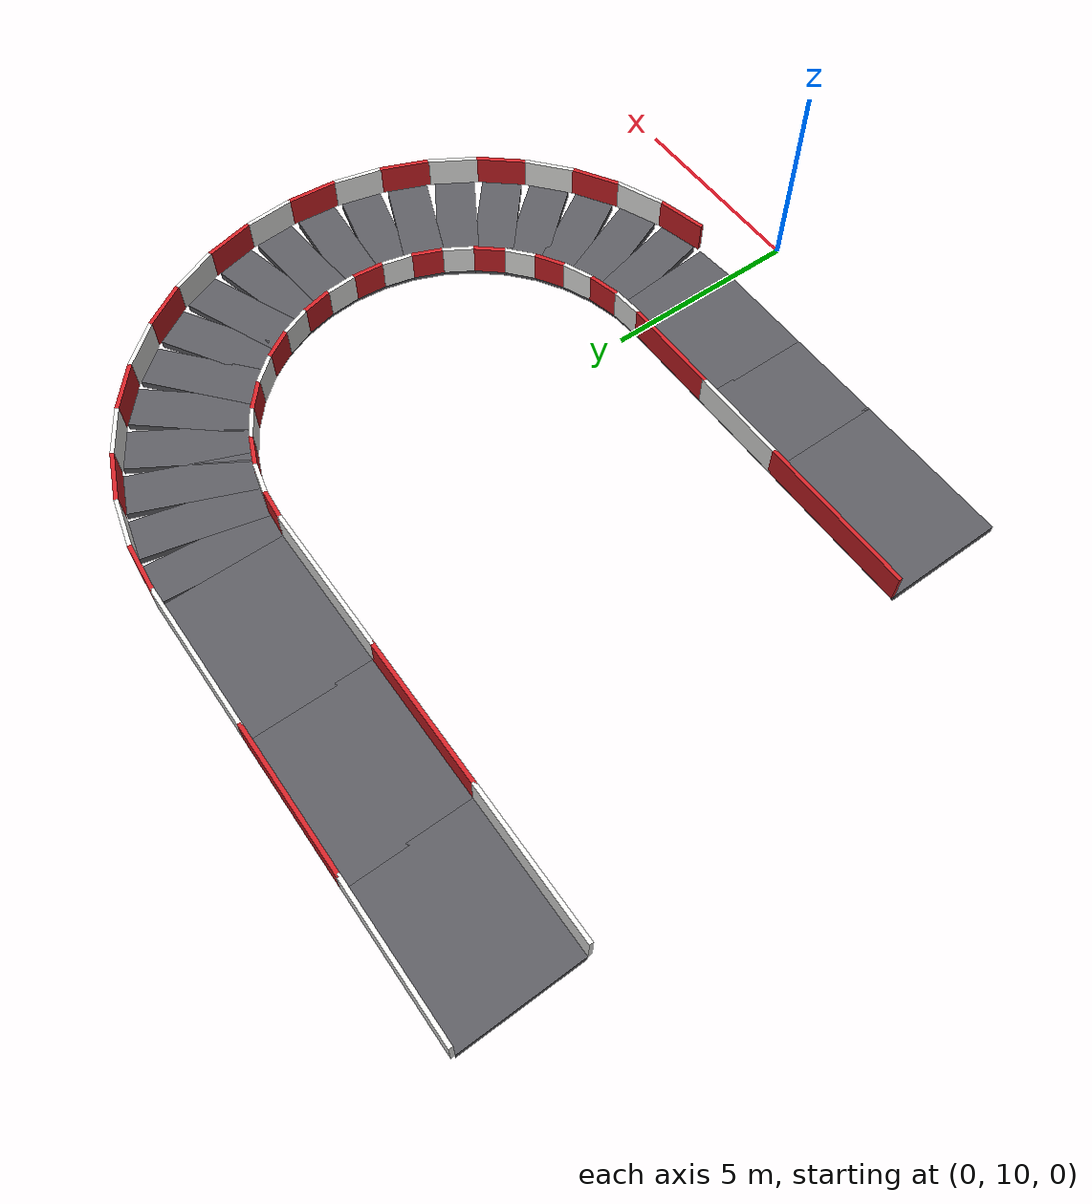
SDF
<sdf version="1.10">
 <world name="ika_parkur">
  <model name="parkur_road">
   <static>true</static>
   <link name="road_0118">
    <pose>-7 13 -0.1 0 0 0</pose>
    <collision name="road_0118_col">
     <geometry><box><size>4.08 3 0.2</size></box></geometry>
     <surface>
      <friction><ode><mu>1</mu><mu2>1</mu2></ode></friction>
      <contact><ode><kp>1000000</kp><kd>1</kd></ode></contact>
     </surface>
    </collision>
    <visual name="road_0118_vis">
     <geometry><box><size>4.08 3 0.2</size></box></geometry>
     <material>
      <ambient>0.35 0.35 0.37 1</ambient>
      <diffuse>0.35 0.35 0.37 1</diffuse>
      <specular>0.1 0.1 0.1 1</specular>
     </material>
    </visual>
   </link>
   <link name="road_0119">
    <pose>-3.75 13 -0.1 0 0 0</pose>
    <collision name="road_0119_col">
     <geometry><box><size>2.55 3 0.2</size></box></geometry>
     <surface>
      <friction><ode><mu>1</mu><mu2>1</mu2></ode></friction>
      <contact><ode><kp>1000000</kp><kd>1</kd></ode></contact>
     </surface>
    </collision>
    <visual name="road_0119_vis">
     <geometry><box><size>2.55 3 0.2</size></box></geometry>
     <material>
      <ambient>0.35 0.35 0.37 1</ambient>
      <diffuse>0.35 0.35 0.37 1</diffuse>
      <specular>0.1 0.1 0.1 1</specular>
     </material>
    </visual>
   </link>
   <link name="road_0120">
    <pose>-1.25 13 -0.1 0 0 0</pose>
    <collision name="road_0120_col">
     <geometry><box><size>2.55 3 0.2</size></box></geometry>
     <surface>
      <friction><ode><mu>1</mu><mu2>1</mu2></ode></friction>
      <contact><ode><kp>1000000</kp><kd>1</kd></ode></contact>
     </surface>
    </collision>
    <visual name="road_0120_vis">
     <geometry><box><size>2.55 3 0.2</size></box></geometry>
     <material>
      <ambient>0.35 0.35 0.37 1</ambient>
      <diffuse>0.35 0.35 0.37 1</diffuse>
      <specular>0.1 0.1 0.1 1</specular>
     </material>
    </visual>
   </link>
   <link name="road_0121">
    <pose>0.508412 13.040013 -0.1 0 0 0.07854</pose>
    <collision name="road_0121_col">
     <geometry><box><size>1.040368 3 0.2</size></box></geometry>
     <surface>
      <friction><ode><mu>1</mu><mu2>1</mu2></ode></friction>
      <contact><ode><kp>1000000</kp><kd>1</kd></ode></contact>
     </surface>
    </collision>
    <visual name="road_0121_vis">
     <geometry><box><size>1.040368 3 0.2</size></box></geometry>
     <material>
      <ambient>0.35 0.35 0.37 1</ambient>
      <diffuse>0.35 0.35 0.37 1</diffuse>
      <specular>0.1 0.1 0.1 1</specular>
     </material>
    </visual>
   </link>
   <link name="road_0122">
    <pose>1.512717 13.199079 -0.1 0 0 0.235619</pose>
    <collision name="road_0122_col">
     <geometry><box><size>1.040368 3 0.2</size></box></geometry>
     <surface>
      <friction><ode><mu>1</mu><mu2>1</mu2></ode></friction>
      <contact><ode><kp>1000000</kp><kd>1</kd></ode></contact>
     </surface>
    </collision>
    <visual name="road_0122_vis">
     <geometry><box><size>1.040368 3 0.2</size></box></geometry>
     <material>
      <ambient>0.35 0.35 0.37 1</ambient>
      <diffuse>0.35 0.35 0.37 1</diffuse>
      <specular>0.1 0.1 0.1 1</specular>
     </material>
    </visual>
   </link>
   <link name="road_0123">
    <pose>2.479774 13.513295 -0.1 0 0 0.392699</pose>
    <collision name="road_0123_col">
     <geometry><box><size>1.040368 3 0.2</size></box></geometry>
     <surface>
      <friction><ode><mu>1</mu><mu2>1</mu2></ode></friction>
      <contact><ode><kp>1000000</kp><kd>1</kd></ode></contact>
     </surface>
    </collision>
    <visual name="road_0123_vis">
     <geometry><box><size>1.040368 3 0.2</size></box></geometry>
     <material>
      <ambient>0.35 0.35 0.37 1</ambient>
      <diffuse>0.35 0.35 0.37 1</diffuse>
      <specular>0.1 0.1 0.1 1</specular>
     </material>
    </visual>
   </link>
   <link name="road_0124">
    <pose>3.385771 13.974924 -0.1 0 0 0.549779</pose>
    <collision name="road_0124_col">
     <geometry><box><size>1.040368 3 0.2</size></box></geometry>
     <surface>
      <friction><ode><mu>1</mu><mu2>1</mu2></ode></friction>
      <contact><ode><kp>1000000</kp><kd>1</kd></ode></contact>
     </surface>
    </collision>
    <visual name="road_0124_vis">
     <geometry><box><size>1.040368 3 0.2</size></box></geometry>
     <material>
      <ambient>0.35 0.35 0.37 1</ambient>
      <diffuse>0.35 0.35 0.37 1</diffuse>
      <specular>0.1 0.1 0.1 1</specular>
     </material>
    </visual>
   </link>
   <link name="road_0125">
    <pose>4.208399 14.572598 -0.1 0 0 0.706858</pose>
    <collision name="road_0125_col">
     <geometry><box><size>1.040368 3 0.2</size></box></geometry>
     <surface>
      <friction><ode><mu>1</mu><mu2>1</mu2></ode></friction>
      <contact><ode><kp>1000000</kp><kd>1</kd></ode></contact>
     </surface>
    </collision>
    <visual name="road_0125_vis">
     <geometry><box><size>1.040368 3 0.2</size></box></geometry>
     <material>
      <ambient>0.35 0.35 0.37 1</ambient>
      <diffuse>0.35 0.35 0.37 1</diffuse>
      <specular>0.1 0.1 0.1 1</specular>
     </material>
    </visual>
   </link>
   <link name="road_0126">
    <pose>4.927402 15.291601 -0.1 0 0 0.863938</pose>
    <collision name="road_0126_col">
     <geometry><box><size>1.040368 3 0.2</size></box></geometry>
     <surface>
      <friction><ode><mu>1</mu><mu2>1</mu2></ode></friction>
      <contact><ode><kp>1000000</kp><kd>1</kd></ode></contact>
     </surface>
    </collision>
    <visual name="road_0126_vis">
     <geometry><box><size>1.040368 3 0.2</size></box></geometry>
     <material>
      <ambient>0.35 0.35 0.37 1</ambient>
      <diffuse>0.35 0.35 0.37 1</diffuse>
      <specular>0.1 0.1 0.1 1</specular>
     </material>
    </visual>
   </link>
   <link name="road_0127">
    <pose>5.525076 16.114229 -0.1 0 0 1.021018</pose>
    <collision name="road_0127_col">
     <geometry><box><size>1.040368 3 0.2</size></box></geometry>
     <surface>
      <friction><ode><mu>1</mu><mu2>1</mu2></ode></friction>
      <contact><ode><kp>1000000</kp><kd>1</kd></ode></contact>
     </surface>
    </collision>
    <visual name="road_0127_vis">
     <geometry><box><size>1.040368 3 0.2</size></box></geometry>
     <material>
      <ambient>0.35 0.35 0.37 1</ambient>
      <diffuse>0.35 0.35 0.37 1</diffuse>
      <specular>0.1 0.1 0.1 1</specular>
     </material>
    </visual>
   </link>
   <link name="road_0128">
    <pose>5.986705 17.020226 -0.1 0 0 1.178097</pose>
    <collision name="road_0128_col">
     <geometry><box><size>1.040368 3 0.2</size></box></geometry>
     <surface>
      <friction><ode><mu>1</mu><mu2>1</mu2></ode></friction>
      <contact><ode><kp>1000000</kp><kd>1</kd></ode></contact>
     </surface>
    </collision>
    <visual name="road_0128_vis">
     <geometry><box><size>1.040368 3 0.2</size></box></geometry>
     <material>
      <ambient>0.35 0.35 0.37 1</ambient>
      <diffuse>0.35 0.35 0.37 1</diffuse>
      <specular>0.1 0.1 0.1 1</specular>
     </material>
    </visual>
   </link>
   <link name="road_0129">
    <pose>6.300921 17.987283 -0.1 0 0 1.335177</pose>
    <collision name="road_0129_col">
     <geometry><box><size>1.040368 3 0.2</size></box></geometry>
     <surface>
      <friction><ode><mu>1</mu><mu2>1</mu2></ode></friction>
      <contact><ode><kp>1000000</kp><kd>1</kd></ode></contact>
     </surface>
    </collision>
    <visual name="road_0129_vis">
     <geometry><box><size>1.040368 3 0.2</size></box></geometry>
     <material>
      <ambient>0.35 0.35 0.37 1</ambient>
      <diffuse>0.35 0.35 0.37 1</diffuse>
      <specular>0.1 0.1 0.1 1</specular>
     </material>
    </visual>
   </link>
   <link name="road_0130">
    <pose>6.459987 18.991588 -0.1 0 0 1.492257</pose>
    <collision name="road_0130_col">
     <geometry><box><size>1.040368 3 0.2</size></box></geometry>
     <surface>
      <friction><ode><mu>1</mu><mu2>1</mu2></ode></friction>
      <contact><ode><kp>1000000</kp><kd>1</kd></ode></contact>
     </surface>
    </collision>
    <visual name="road_0130_vis">
     <geometry><box><size>1.040368 3 0.2</size></box></geometry>
     <material>
      <ambient>0.35 0.35 0.37 1</ambient>
      <diffuse>0.35 0.35 0.37 1</diffuse>
      <specular>0.1 0.1 0.1 1</specular>
     </material>
    </visual>
   </link>
   <link name="road_0131">
    <pose>6.459987 20.008412 -0.1 0 0 1.649336</pose>
    <collision name="road_0131_col">
     <geometry><box><size>1.040368 3 0.2</size></box></geometry>
     <surface>
      <friction><ode><mu>1</mu><mu2>1</mu2></ode></friction>
      <contact><ode><kp>1000000</kp><kd>1</kd></ode></contact>
     </surface>
    </collision>
    <visual name="road_0131_vis">
     <geometry><box><size>1.040368 3 0.2</size></box></geometry>
     <material>
      <ambient>0.35 0.35 0.37 1</ambient>
      <diffuse>0.35 0.35 0.37 1</diffuse>
      <specular>0.1 0.1 0.1 1</specular>
     </material>
    </visual>
   </link>
   <link name="road_0132">
    <pose>6.300921 21.012717 -0.1 0 0 1.806416</pose>
    <collision name="road_0132_col">
     <geometry><box><size>1.040368 3 0.2</size></box></geometry>
     <surface>
      <friction><ode><mu>1</mu><mu2>1</mu2></ode></friction>
      <contact><ode><kp>1000000</kp><kd>1</kd></ode></contact>
     </surface>
    </collision>
    <visual name="road_0132_vis">
     <geometry><box><size>1.040368 3 0.2</size></box></geometry>
     <material>
      <ambient>0.35 0.35 0.37 1</ambient>
      <diffuse>0.35 0.35 0.37 1</diffuse>
      <specular>0.1 0.1 0.1 1</specular>
     </material>
    </visual>
   </link>
   <link name="road_0133">
    <pose>5.986705 21.979774 -0.1 0 0 1.963495</pose>
    <collision name="road_0133_col">
     <geometry><box><size>1.040368 3 0.2</size></box></geometry>
     <surface>
      <friction><ode><mu>1</mu><mu2>1</mu2></ode></friction>
      <contact><ode><kp>1000000</kp><kd>1</kd></ode></contact>
     </surface>
    </collision>
    <visual name="road_0133_vis">
     <geometry><box><size>1.040368 3 0.2</size></box></geometry>
     <material>
      <ambient>0.35 0.35 0.37 1</ambient>
      <diffuse>0.35 0.35 0.37 1</diffuse>
      <specular>0.1 0.1 0.1 1</specular>
     </material>
    </visual>
   </link>
   <link name="road_0134">
    <pose>5.525076 22.885771 -0.1 0 0 2.120575</pose>
    <collision name="road_0134_col">
     <geometry><box><size>1.040368 3 0.2</size></box></geometry>
     <surface>
      <friction><ode><mu>1</mu><mu2>1</mu2></ode></friction>
      <contact><ode><kp>1000000</kp><kd>1</kd></ode></contact>
     </surface>
    </collision>
    <visual name="road_0134_vis">
     <geometry><box><size>1.040368 3 0.2</size></box></geometry>
     <material>
      <ambient>0.35 0.35 0.37 1</ambient>
      <diffuse>0.35 0.35 0.37 1</diffuse>
      <specular>0.1 0.1 0.1 1</specular>
     </material>
    </visual>
   </link>
   <link name="road_0135">
    <pose>4.927402 23.708399 -0.1 0 0 2.277655</pose>
    <collision name="road_0135_col">
     <geometry><box><size>1.040368 3 0.2</size></box></geometry>
     <surface>
      <friction><ode><mu>1</mu><mu2>1</mu2></ode></friction>
      <contact><ode><kp>1000000</kp><kd>1</kd></ode></contact>
     </surface>
    </collision>
    <visual name="road_0135_vis">
     <geometry><box><size>1.040368 3 0.2</size></box></geometry>
     <material>
      <ambient>0.35 0.35 0.37 1</ambient>
      <diffuse>0.35 0.35 0.37 1</diffuse>
      <specular>0.1 0.1 0.1 1</specular>
     </material>
    </visual>
   </link>
   <link name="road_0136">
    <pose>4.208399 24.427402 -0.1 0 0 2.434734</pose>
    <collision name="road_0136_col">
     <geometry><box><size>1.040368 3 0.2</size></box></geometry>
     <surface>
      <friction><ode><mu>1</mu><mu2>1</mu2></ode></friction>
      <contact><ode><kp>1000000</kp><kd>1</kd></ode></contact>
     </surface>
    </collision>
    <visual name="road_0136_vis">
     <geometry><box><size>1.040368 3 0.2</size></box></geometry>
     <material>
      <ambient>0.35 0.35 0.37 1</ambient>
      <diffuse>0.35 0.35 0.37 1</diffuse>
      <specular>0.1 0.1 0.1 1</specular>
     </material>
    </visual>
   </link>
   <link name="road_0137">
    <pose>3.385771 25.025076 -0.1 0 0 2.591814</pose>
    <collision name="road_0137_col">
     <geometry><box><size>1.040368 3 0.2</size></box></geometry>
     <surface>
      <friction><ode><mu>1</mu><mu2>1</mu2></ode></friction>
      <contact><ode><kp>1000000</kp><kd>1</kd></ode></contact>
     </surface>
    </collision>
    <visual name="road_0137_vis">
     <geometry><box><size>1.040368 3 0.2</size></box></geometry>
     <material>
      <ambient>0.35 0.35 0.37 1</ambient>
      <diffuse>0.35 0.35 0.37 1</diffuse>
      <specular>0.1 0.1 0.1 1</specular>
     </material>
    </visual>
   </link>
   <link name="road_0138">
    <pose>2.479774 25.486705 -0.1 0 0 2.748894</pose>
    <collision name="road_0138_col">
     <geometry><box><size>1.040368 3 0.2</size></box></geometry>
     <surface>
      <friction><ode><mu>1</mu><mu2>1</mu2></ode></friction>
      <contact><ode><kp>1000000</kp><kd>1</kd></ode></contact>
     </surface>
    </collision>
    <visual name="road_0138_vis">
     <geometry><box><size>1.040368 3 0.2</size></box></geometry>
     <material>
      <ambient>0.35 0.35 0.37 1</ambient>
      <diffuse>0.35 0.35 0.37 1</diffuse>
      <specular>0.1 0.1 0.1 1</specular>
     </material>
    </visual>
   </link>
   <link name="road_0139">
    <pose>1.512717 25.800921 -0.1 0 0 2.905973</pose>
    <collision name="road_0139_col">
     <geometry><box><size>1.040368 3 0.2</size></box></geometry>
     <surface>
      <friction><ode><mu>1</mu><mu2>1</mu2></ode></friction>
      <contact><ode><kp>1000000</kp><kd>1</kd></ode></contact>
     </surface>
    </collision>
    <visual name="road_0139_vis">
     <geometry><box><size>1.040368 3 0.2</size></box></geometry>
     <material>
      <ambient>0.35 0.35 0.37 1</ambient>
      <diffuse>0.35 0.35 0.37 1</diffuse>
      <specular>0.1 0.1 0.1 1</specular>
     </material>
    </visual>
   </link>
   <link name="road_0140">
    <pose>0.508412 25.959987 -0.1 0 0 3.063053</pose>
    <collision name="road_0140_col">
     <geometry><box><size>1.040368 3 0.2</size></box></geometry>
     <surface>
      <friction><ode><mu>1</mu><mu2>1</mu2></ode></friction>
      <contact><ode><kp>1000000</kp><kd>1</kd></ode></contact>
     </surface>
    </collision>
    <visual name="road_0140_vis">
     <geometry><box><size>1.040368 3 0.2</size></box></geometry>
     <material>
      <ambient>0.35 0.35 0.37 1</ambient>
      <diffuse>0.35 0.35 0.37 1</diffuse>
      <specular>0.1 0.1 0.1 1</specular>
     </material>
    </visual>
   </link>
   <link name="road_0141">
    <pose>-1.875 26 -0.1 0 0 3.141593</pose>
    <collision name="road_0141_col">
     <geometry><box><size>3.825 3 0.2</size></box></geometry>
     <surface>
      <friction><ode><mu>1</mu><mu2>1</mu2></ode></friction>
      <contact><ode><kp>1000000</kp><kd>1</kd></ode></contact>
     </surface>
    </collision>
    <visual name="road_0141_vis">
     <geometry><box><size>3.825 3 0.2</size></box></geometry>
     <material>
      <ambient>0.35 0.35 0.37 1</ambient>
      <diffuse>0.35 0.35 0.37 1</diffuse>
      <specular>0.1 0.1 0.1 1</specular>
     </material>
    </visual>
   </link>
   <link name="road_0142">
    <pose>-5.625 26 -0.1 0 0 3.141593</pose>
    <collision name="road_0142_col">
     <geometry><box><size>3.825 3 0.2</size></box></geometry>
     <surface>
      <friction><ode><mu>1</mu><mu2>1</mu2></ode></friction>
      <contact><ode><kp>1000000</kp><kd>1</kd></ode></contact>
     </surface>
    </collision>
    <visual name="road_0142_vis">
     <geometry><box><size>3.825 3 0.2</size></box></geometry>
     <material>
      <ambient>0.35 0.35 0.37 1</ambient>
      <diffuse>0.35 0.35 0.37 1</diffuse>
      <specular>0.1 0.1 0.1 1</specular>
     </material>
    </visual>
   </link>
   <link name="road_0143">
    <pose>-9.375 26 -0.1 0 0 3.141593</pose>
    <collision name="road_0143_col">
     <geometry><box><size>3.825 3 0.2</size></box></geometry>
     <surface>
      <friction><ode><mu>1</mu><mu2>1</mu2></ode></friction>
      <contact><ode><kp>1000000</kp><kd>1</kd></ode></contact>
     </surface>
    </collision>
    <visual name="road_0143_vis">
     <geometry><box><size>3.825 3 0.2</size></box></geometry>
     <material>
      <ambient>0.35 0.35 0.37 1</ambient>
      <diffuse>0.35 0.35 0.37 1</diffuse>
      <specular>0.1 0.1 0.1 1</specular>
     </material>
    </visual>
   </link>
  </model>
  <model name="parkur_barriers">
   <static>true</static>
   <link name="barrier_l_0118">
    <pose>-7 14.55 0.4 0 0 0</pose>
    <collision name="barrier_l_0118_col">
     <geometry><box><size>4.08 0.1 0.8</size></box></geometry>
     <surface>
      <friction><ode><mu>0.6</mu><mu2>0.6</mu2></ode></friction>
      <contact><ode><kp>1000000</kp><kd>1</kd></ode></contact>
     </surface>
    </collision>
    <visual name="barrier_l_0118_vis">
     <geometry><box><size>4.08 0.1 0.8</size></box></geometry>
     <material>
      <ambient>0.81 0.13 0.15 1</ambient>
      <diffuse>0.81 0.13 0.15 1</diffuse>
      <specular>0.1 0.1 0.1 1</specular>
     </material>
    </visual>
   </link>
   <link name="barrier_l_0119">
    <pose>-3.75 14.55 0.4 0 0 0</pose>
    <collision name="barrier_l_0119_col">
     <geometry><box><size>2.55 0.1 0.8</size></box></geometry>
     <surface>
      <friction><ode><mu>0.6</mu><mu2>0.6</mu2></ode></friction>
      <contact><ode><kp>1000000</kp><kd>1</kd></ode></contact>
     </surface>
    </collision>
    <visual name="barrier_l_0119_vis">
     <geometry><box><size>2.55 0.1 0.8</size></box></geometry>
     <material>
      <ambient>0.93 0.93 0.92 1</ambient>
      <diffuse>0.93 0.93 0.92 1</diffuse>
      <specular>0.1 0.1 0.1 1</specular>
     </material>
    </visual>
   </link>
   <link name="barrier_l_0120">
    <pose>-1.25 14.55 0.4 0 0 0</pose>
    <collision name="barrier_l_0120_col">
     <geometry><box><size>2.55 0.1 0.8</size></box></geometry>
     <surface>
      <friction><ode><mu>0.6</mu><mu2>0.6</mu2></ode></friction>
      <contact><ode><kp>1000000</kp><kd>1</kd></ode></contact>
     </surface>
    </collision>
    <visual name="barrier_l_0120_vis">
     <geometry><box><size>2.55 0.1 0.8</size></box></geometry>
     <material>
      <ambient>0.81 0.13 0.15 1</ambient>
      <diffuse>0.81 0.13 0.15 1</diffuse>
      <specular>0.1 0.1 0.1 1</specular>
     </material>
    </visual>
   </link>
   <link name="barrier_l_0121">
    <pose>0.387175 14.580471 0.4 0 0 0.07854</pose>
    <collision name="barrier_l_0121_col">
     <geometry><box><size>0.79228 0.1 0.8</size></box></geometry>
     <surface>
      <friction><ode><mu>0.6</mu><mu2>0.6</mu2></ode></friction>
      <contact><ode><kp>1000000</kp><kd>1</kd></ode></contact>
     </surface>
    </collision>
    <visual name="barrier_l_0121_vis">
     <geometry><box><size>0.79228 0.1 0.8</size></box></geometry>
     <material>
      <ambient>0.93 0.93 0.92 1</ambient>
      <diffuse>0.93 0.93 0.92 1</diffuse>
      <specular>0.1 0.1 0.1 1</specular>
     </material>
    </visual>
   </link>
   <link name="barrier_l_0122">
    <pose>1.151992 14.701606 0.4 0 0 0.235619</pose>
    <collision name="barrier_l_0122_col">
     <geometry><box><size>0.79228 0.1 0.8</size></box></geometry>
     <surface>
      <friction><ode><mu>0.6</mu><mu2>0.6</mu2></ode></friction>
      <contact><ode><kp>1000000</kp><kd>1</kd></ode></contact>
     </surface>
    </collision>
    <visual name="barrier_l_0122_vis">
     <geometry><box><size>0.79228 0.1 0.8</size></box></geometry>
     <material>
      <ambient>0.81 0.13 0.15 1</ambient>
      <diffuse>0.81 0.13 0.15 1</diffuse>
      <specular>0.1 0.1 0.1 1</specular>
     </material>
    </visual>
   </link>
   <link name="barrier_r_0122">
    <pose>1.873442 11.696552 0.4 0 0 0.235619</pose>
    <collision name="barrier_r_0122_col">
     <geometry><box><size>1.288455 0.1 0.8</size></box></geometry>
     <surface>
      <friction><ode><mu>0.6</mu><mu2>0.6</mu2></ode></friction>
      <contact><ode><kp>1000000</kp><kd>1</kd></ode></contact>
     </surface>
    </collision>
    <visual name="barrier_r_0122_vis">
     <geometry><box><size>1.288455 0.1 0.8</size></box></geometry>
     <material>
      <ambient>0.81 0.13 0.15 1</ambient>
      <diffuse>0.81 0.13 0.15 1</diffuse>
      <specular>0.1 0.1 0.1 1</specular>
     </material>
    </visual>
   </link>
   <link name="barrier_l_0123">
    <pose>1.888444 14.940894 0.4 0 0 0.392699</pose>
    <collision name="barrier_l_0123_col">
     <geometry><box><size>0.79228 0.1 0.8</size></box></geometry>
     <surface>
      <friction><ode><mu>0.6</mu><mu2>0.6</mu2></ode></friction>
      <contact><ode><kp>1000000</kp><kd>1</kd></ode></contact>
     </surface>
    </collision>
    <visual name="barrier_l_0123_vis">
     <geometry><box><size>0.79228 0.1 0.8</size></box></geometry>
     <material>
      <ambient>0.93 0.93 0.92 1</ambient>
      <diffuse>0.93 0.93 0.92 1</diffuse>
      <specular>0.1 0.1 0.1 1</specular>
     </material>
    </visual>
   </link>
   <link name="barrier_r_0123">
    <pose>3.071105 12.085696 0.4 0 0 0.392699</pose>
    <collision name="barrier_r_0123_col">
     <geometry><box><size>1.288455 0.1 0.8</size></box></geometry>
     <surface>
      <friction><ode><mu>0.6</mu><mu2>0.6</mu2></ode></friction>
      <contact><ode><kp>1000000</kp><kd>1</kd></ode></contact>
     </surface>
    </collision>
    <visual name="barrier_r_0123_vis">
     <geometry><box><size>1.288455 0.1 0.8</size></box></geometry>
     <material>
      <ambient>0.93 0.93 0.92 1</ambient>
      <diffuse>0.93 0.93 0.92 1</diffuse>
      <specular>0.1 0.1 0.1 1</specular>
     </material>
    </visual>
   </link>
   <link name="barrier_l_0124">
    <pose>2.578395 15.292442 0.4 0 0 0.549779</pose>
    <collision name="barrier_l_0124_col">
     <geometry><box><size>0.79228 0.1 0.8</size></box></geometry>
     <surface>
      <friction><ode><mu>0.6</mu><mu2>0.6</mu2></ode></friction>
      <contact><ode><kp>1000000</kp><kd>1</kd></ode></contact>
     </surface>
    </collision>
    <visual name="barrier_l_0124_vis">
     <geometry><box><size>0.79228 0.1 0.8</size></box></geometry>
     <material>
      <ambient>0.81 0.13 0.15 1</ambient>
      <diffuse>0.81 0.13 0.15 1</diffuse>
      <specular>0.1 0.1 0.1 1</specular>
     </material>
    </visual>
   </link>
   <link name="barrier_r_0124">
    <pose>4.193147 12.657405 0.4 0 0 0.549779</pose>
    <collision name="barrier_r_0124_col">
     <geometry><box><size>1.288455 0.1 0.8</size></box></geometry>
     <surface>
      <friction><ode><mu>0.6</mu><mu2>0.6</mu2></ode></friction>
      <contact><ode><kp>1000000</kp><kd>1</kd></ode></contact>
     </surface>
    </collision>
    <visual name="barrier_r_0124_vis">
     <geometry><box><size>1.288455 0.1 0.8</size></box></geometry>
     <material>
      <ambient>0.81 0.13 0.15 1</ambient>
      <diffuse>0.81 0.13 0.15 1</diffuse>
      <specular>0.1 0.1 0.1 1</specular>
     </material>
    </visual>
   </link>
   <link name="barrier_l_0125">
    <pose>3.204858 15.747594 0.4 0 0 0.706858</pose>
    <collision name="barrier_l_0125_col">
     <geometry><box><size>0.79228 0.1 0.8</size></box></geometry>
     <surface>
      <friction><ode><mu>0.6</mu><mu2>0.6</mu2></ode></friction>
      <contact><ode><kp>1000000</kp><kd>1</kd></ode></contact>
     </surface>
    </collision>
    <visual name="barrier_l_0125_vis">
     <geometry><box><size>0.79228 0.1 0.8</size></box></geometry>
     <material>
      <ambient>0.93 0.93 0.92 1</ambient>
      <diffuse>0.93 0.93 0.92 1</diffuse>
      <specular>0.1 0.1 0.1 1</specular>
     </material>
    </visual>
   </link>
   <link name="barrier_r_0125">
    <pose>5.21194 13.397602 0.4 0 0 0.706858</pose>
    <collision name="barrier_r_0125_col">
     <geometry><box><size>1.288455 0.1 0.8</size></box></geometry>
     <surface>
      <friction><ode><mu>0.6</mu><mu2>0.6</mu2></ode></friction>
      <contact><ode><kp>1000000</kp><kd>1</kd></ode></contact>
     </surface>
    </collision>
    <visual name="barrier_r_0125_vis">
     <geometry><box><size>1.288455 0.1 0.8</size></box></geometry>
     <material>
      <ambient>0.93 0.93 0.92 1</ambient>
      <diffuse>0.93 0.93 0.92 1</diffuse>
      <specular>0.1 0.1 0.1 1</specular>
     </material>
    </visual>
   </link>
   <link name="barrier_l_0126">
    <pose>3.752406 16.295142 0.4 0 0 0.863938</pose>
    <collision name="barrier_l_0126_col">
     <geometry><box><size>0.79228 0.1 0.8</size></box></geometry>
     <surface>
      <friction><ode><mu>0.6</mu><mu2>0.6</mu2></ode></friction>
      <contact><ode><kp>1000000</kp><kd>1</kd></ode></contact>
     </surface>
    </collision>
    <visual name="barrier_l_0126_vis">
     <geometry><box><size>0.79228 0.1 0.8</size></box></geometry>
     <material>
      <ambient>0.81 0.13 0.15 1</ambient>
      <diffuse>0.81 0.13 0.15 1</diffuse>
      <specular>0.1 0.1 0.1 1</specular>
     </material>
    </visual>
   </link>
   <link name="barrier_r_0126">
    <pose>6.102398 14.28806 0.4 0 0 0.863938</pose>
    <collision name="barrier_r_0126_col">
     <geometry><box><size>1.288455 0.1 0.8</size></box></geometry>
     <surface>
      <friction><ode><mu>0.6</mu><mu2>0.6</mu2></ode></friction>
      <contact><ode><kp>1000000</kp><kd>1</kd></ode></contact>
     </surface>
    </collision>
    <visual name="barrier_r_0126_vis">
     <geometry><box><size>1.288455 0.1 0.8</size></box></geometry>
     <material>
      <ambient>0.81 0.13 0.15 1</ambient>
      <diffuse>0.81 0.13 0.15 1</diffuse>
      <specular>0.1 0.1 0.1 1</specular>
     </material>
    </visual>
   </link>
   <link name="barrier_l_0127">
    <pose>4.207558 16.921605 0.4 0 0 1.021018</pose>
    <collision name="barrier_l_0127_col">
     <geometry><box><size>0.79228 0.1 0.8</size></box></geometry>
     <surface>
      <friction><ode><mu>0.6</mu><mu2>0.6</mu2></ode></friction>
      <contact><ode><kp>1000000</kp><kd>1</kd></ode></contact>
     </surface>
    </collision>
    <visual name="barrier_l_0127_vis">
     <geometry><box><size>0.79228 0.1 0.8</size></box></geometry>
     <material>
      <ambient>0.93 0.93 0.92 1</ambient>
      <diffuse>0.93 0.93 0.92 1</diffuse>
      <specular>0.1 0.1 0.1 1</specular>
     </material>
    </visual>
   </link>
   <link name="barrier_r_0127">
    <pose>6.842595 15.306853 0.4 0 0 1.021018</pose>
    <collision name="barrier_r_0127_col">
     <geometry><box><size>1.288455 0.1 0.8</size></box></geometry>
     <surface>
      <friction><ode><mu>0.6</mu><mu2>0.6</mu2></ode></friction>
      <contact><ode><kp>1000000</kp><kd>1</kd></ode></contact>
     </surface>
    </collision>
    <visual name="barrier_r_0127_vis">
     <geometry><box><size>1.288455 0.1 0.8</size></box></geometry>
     <material>
      <ambient>0.93 0.93 0.92 1</ambient>
      <diffuse>0.93 0.93 0.92 1</diffuse>
      <specular>0.1 0.1 0.1 1</specular>
     </material>
    </visual>
   </link>
   <link name="barrier_l_0128">
    <pose>4.559106 17.611556 0.4 0 0 1.178097</pose>
    <collision name="barrier_l_0128_col">
     <geometry><box><size>0.79228 0.1 0.8</size></box></geometry>
     <surface>
      <friction><ode><mu>0.6</mu><mu2>0.6</mu2></ode></friction>
      <contact><ode><kp>1000000</kp><kd>1</kd></ode></contact>
     </surface>
    </collision>
    <visual name="barrier_l_0128_vis">
     <geometry><box><size>0.79228 0.1 0.8</size></box></geometry>
     <material>
      <ambient>0.81 0.13 0.15 1</ambient>
      <diffuse>0.81 0.13 0.15 1</diffuse>
      <specular>0.1 0.1 0.1 1</specular>
     </material>
    </visual>
   </link>
   <link name="barrier_r_0128">
    <pose>7.414304 16.428895 0.4 0 0 1.178097</pose>
    <collision name="barrier_r_0128_col">
     <geometry><box><size>1.288455 0.1 0.8</size></box></geometry>
     <surface>
      <friction><ode><mu>0.6</mu><mu2>0.6</mu2></ode></friction>
      <contact><ode><kp>1000000</kp><kd>1</kd></ode></contact>
     </surface>
    </collision>
    <visual name="barrier_r_0128_vis">
     <geometry><box><size>1.288455 0.1 0.8</size></box></geometry>
     <material>
      <ambient>0.81 0.13 0.15 1</ambient>
      <diffuse>0.81 0.13 0.15 1</diffuse>
      <specular>0.1 0.1 0.1 1</specular>
     </material>
    </visual>
   </link>
   <link name="barrier_l_0129">
    <pose>4.798394 18.348008 0.4 0 0 1.335177</pose>
    <collision name="barrier_l_0129_col">
     <geometry><box><size>0.79228 0.1 0.8</size></box></geometry>
     <surface>
      <friction><ode><mu>0.6</mu><mu2>0.6</mu2></ode></friction>
      <contact><ode><kp>1000000</kp><kd>1</kd></ode></contact>
     </surface>
    </collision>
    <visual name="barrier_l_0129_vis">
     <geometry><box><size>0.79228 0.1 0.8</size></box></geometry>
     <material>
      <ambient>0.93 0.93 0.92 1</ambient>
      <diffuse>0.93 0.93 0.92 1</diffuse>
      <specular>0.1 0.1 0.1 1</specular>
     </material>
    </visual>
   </link>
   <link name="barrier_r_0129">
    <pose>7.803448 17.626558 0.4 0 0 1.335177</pose>
    <collision name="barrier_r_0129_col">
     <geometry><box><size>1.288455 0.1 0.8</size></box></geometry>
     <surface>
      <friction><ode><mu>0.6</mu><mu2>0.6</mu2></ode></friction>
      <contact><ode><kp>1000000</kp><kd>1</kd></ode></contact>
     </surface>
    </collision>
    <visual name="barrier_r_0129_vis">
     <geometry><box><size>1.288455 0.1 0.8</size></box></geometry>
     <material>
      <ambient>0.93 0.93 0.92 1</ambient>
      <diffuse>0.93 0.93 0.92 1</diffuse>
      <specular>0.1 0.1 0.1 1</specular>
     </material>
    </visual>
   </link>
   <link name="barrier_l_0130">
    <pose>4.919529 19.112825 0.4 0 0 1.492257</pose>
    <collision name="barrier_l_0130_col">
     <geometry><box><size>0.79228 0.1 0.8</size></box></geometry>
     <surface>
      <friction><ode><mu>0.6</mu><mu2>0.6</mu2></ode></friction>
      <contact><ode><kp>1000000</kp><kd>1</kd></ode></contact>
     </surface>
    </collision>
    <visual name="barrier_l_0130_vis">
     <geometry><box><size>0.79228 0.1 0.8</size></box></geometry>
     <material>
      <ambient>0.81 0.13 0.15 1</ambient>
      <diffuse>0.81 0.13 0.15 1</diffuse>
      <specular>0.1 0.1 0.1 1</specular>
     </material>
    </visual>
   </link>
   <link name="barrier_r_0130">
    <pose>8.000446 18.870351 0.4 0 0 1.492257</pose>
    <collision name="barrier_r_0130_col">
     <geometry><box><size>1.288455 0.1 0.8</size></box></geometry>
     <surface>
      <friction><ode><mu>0.6</mu><mu2>0.6</mu2></ode></friction>
      <contact><ode><kp>1000000</kp><kd>1</kd></ode></contact>
     </surface>
    </collision>
    <visual name="barrier_r_0130_vis">
     <geometry><box><size>1.288455 0.1 0.8</size></box></geometry>
     <material>
      <ambient>0.81 0.13 0.15 1</ambient>
      <diffuse>0.81 0.13 0.15 1</diffuse>
      <specular>0.1 0.1 0.1 1</specular>
     </material>
    </visual>
   </link>
   <link name="barrier_l_0131">
    <pose>4.919529 19.887175 0.4 0 0 1.649336</pose>
    <collision name="barrier_l_0131_col">
     <geometry><box><size>0.79228 0.1 0.8</size></box></geometry>
     <surface>
      <friction><ode><mu>0.6</mu><mu2>0.6</mu2></ode></friction>
      <contact><ode><kp>1000000</kp><kd>1</kd></ode></contact>
     </surface>
    </collision>
    <visual name="barrier_l_0131_vis">
     <geometry><box><size>0.79228 0.1 0.8</size></box></geometry>
     <material>
      <ambient>0.93 0.93 0.92 1</ambient>
      <diffuse>0.93 0.93 0.92 1</diffuse>
      <specular>0.1 0.1 0.1 1</specular>
     </material>
    </visual>
   </link>
   <link name="barrier_r_0131">
    <pose>8.000446 20.129649 0.4 0 0 1.649336</pose>
    <collision name="barrier_r_0131_col">
     <geometry><box><size>1.288455 0.1 0.8</size></box></geometry>
     <surface>
      <friction><ode><mu>0.6</mu><mu2>0.6</mu2></ode></friction>
      <contact><ode><kp>1000000</kp><kd>1</kd></ode></contact>
     </surface>
    </collision>
    <visual name="barrier_r_0131_vis">
     <geometry><box><size>1.288455 0.1 0.8</size></box></geometry>
     <material>
      <ambient>0.93 0.93 0.92 1</ambient>
      <diffuse>0.93 0.93 0.92 1</diffuse>
      <specular>0.1 0.1 0.1 1</specular>
     </material>
    </visual>
   </link>
   <link name="barrier_l_0132">
    <pose>4.798394 20.651992 0.4 0 0 1.806416</pose>
    <collision name="barrier_l_0132_col">
     <geometry><box><size>0.79228 0.1 0.8</size></box></geometry>
     <surface>
      <friction><ode><mu>0.6</mu><mu2>0.6</mu2></ode></friction>
      <contact><ode><kp>1000000</kp><kd>1</kd></ode></contact>
     </surface>
    </collision>
    <visual name="barrier_l_0132_vis">
     <geometry><box><size>0.79228 0.1 0.8</size></box></geometry>
     <material>
      <ambient>0.81 0.13 0.15 1</ambient>
      <diffuse>0.81 0.13 0.15 1</diffuse>
      <specular>0.1 0.1 0.1 1</specular>
     </material>
    </visual>
   </link>
   <link name="barrier_r_0132">
    <pose>7.803448 21.373442 0.4 0 0 1.806416</pose>
    <collision name="barrier_r_0132_col">
     <geometry><box><size>1.288455 0.1 0.8</size></box></geometry>
     <surface>
      <friction><ode><mu>0.6</mu><mu2>0.6</mu2></ode></friction>
      <contact><ode><kp>1000000</kp><kd>1</kd></ode></contact>
     </surface>
    </collision>
    <visual name="barrier_r_0132_vis">
     <geometry><box><size>1.288455 0.1 0.8</size></box></geometry>
     <material>
      <ambient>0.81 0.13 0.15 1</ambient>
      <diffuse>0.81 0.13 0.15 1</diffuse>
      <specular>0.1 0.1 0.1 1</specular>
     </material>
    </visual>
   </link>
   <link name="barrier_l_0133">
    <pose>4.559106 21.388444 0.4 0 0 1.963495</pose>
    <collision name="barrier_l_0133_col">
     <geometry><box><size>0.79228 0.1 0.8</size></box></geometry>
     <surface>
      <friction><ode><mu>0.6</mu><mu2>0.6</mu2></ode></friction>
      <contact><ode><kp>1000000</kp><kd>1</kd></ode></contact>
     </surface>
    </collision>
    <visual name="barrier_l_0133_vis">
     <geometry><box><size>0.79228 0.1 0.8</size></box></geometry>
     <material>
      <ambient>0.93 0.93 0.92 1</ambient>
      <diffuse>0.93 0.93 0.92 1</diffuse>
      <specular>0.1 0.1 0.1 1</specular>
     </material>
    </visual>
   </link>
   <link name="barrier_r_0133">
    <pose>7.414304 22.571105 0.4 0 0 1.963495</pose>
    <collision name="barrier_r_0133_col">
     <geometry><box><size>1.288455 0.1 0.8</size></box></geometry>
     <surface>
      <friction><ode><mu>0.6</mu><mu2>0.6</mu2></ode></friction>
      <contact><ode><kp>1000000</kp><kd>1</kd></ode></contact>
     </surface>
    </collision>
    <visual name="barrier_r_0133_vis">
     <geometry><box><size>1.288455 0.1 0.8</size></box></geometry>
     <material>
      <ambient>0.93 0.93 0.92 1</ambient>
      <diffuse>0.93 0.93 0.92 1</diffuse>
      <specular>0.1 0.1 0.1 1</specular>
     </material>
    </visual>
   </link>
   <link name="barrier_l_0134">
    <pose>4.207558 22.078395 0.4 0 0 2.120575</pose>
    <collision name="barrier_l_0134_col">
     <geometry><box><size>0.79228 0.1 0.8</size></box></geometry>
     <surface>
      <friction><ode><mu>0.6</mu><mu2>0.6</mu2></ode></friction>
      <contact><ode><kp>1000000</kp><kd>1</kd></ode></contact>
     </surface>
    </collision>
    <visual name="barrier_l_0134_vis">
     <geometry><box><size>0.79228 0.1 0.8</size></box></geometry>
     <material>
      <ambient>0.81 0.13 0.15 1</ambient>
      <diffuse>0.81 0.13 0.15 1</diffuse>
      <specular>0.1 0.1 0.1 1</specular>
     </material>
    </visual>
   </link>
   <link name="barrier_r_0134">
    <pose>6.842595 23.693147 0.4 0 0 2.120575</pose>
    <collision name="barrier_r_0134_col">
     <geometry><box><size>1.288455 0.1 0.8</size></box></geometry>
     <surface>
      <friction><ode><mu>0.6</mu><mu2>0.6</mu2></ode></friction>
      <contact><ode><kp>1000000</kp><kd>1</kd></ode></contact>
     </surface>
    </collision>
    <visual name="barrier_r_0134_vis">
     <geometry><box><size>1.288455 0.1 0.8</size></box></geometry>
     <material>
      <ambient>0.81 0.13 0.15 1</ambient>
      <diffuse>0.81 0.13 0.15 1</diffuse>
      <specular>0.1 0.1 0.1 1</specular>
     </material>
    </visual>
   </link>
   <link name="barrier_l_0135">
    <pose>3.752406 22.704858 0.4 0 0 2.277655</pose>
    <collision name="barrier_l_0135_col">
     <geometry><box><size>0.79228 0.1 0.8</size></box></geometry>
     <surface>
      <friction><ode><mu>0.6</mu><mu2>0.6</mu2></ode></friction>
      <contact><ode><kp>1000000</kp><kd>1</kd></ode></contact>
     </surface>
    </collision>
    <visual name="barrier_l_0135_vis">
     <geometry><box><size>0.79228 0.1 0.8</size></box></geometry>
     <material>
      <ambient>0.93 0.93 0.92 1</ambient>
      <diffuse>0.93 0.93 0.92 1</diffuse>
      <specular>0.1 0.1 0.1 1</specular>
     </material>
    </visual>
   </link>
   <link name="barrier_r_0135">
    <pose>6.102398 24.71194 0.4 0 0 2.277655</pose>
    <collision name="barrier_r_0135_col">
     <geometry><box><size>1.288455 0.1 0.8</size></box></geometry>
     <surface>
      <friction><ode><mu>0.6</mu><mu2>0.6</mu2></ode></friction>
      <contact><ode><kp>1000000</kp><kd>1</kd></ode></contact>
     </surface>
    </collision>
    <visual name="barrier_r_0135_vis">
     <geometry><box><size>1.288455 0.1 0.8</size></box></geometry>
     <material>
      <ambient>0.93 0.93 0.92 1</ambient>
      <diffuse>0.93 0.93 0.92 1</diffuse>
      <specular>0.1 0.1 0.1 1</specular>
     </material>
    </visual>
   </link>
   <link name="barrier_l_0136">
    <pose>3.204858 23.252406 0.4 0 0 2.434734</pose>
    <collision name="barrier_l_0136_col">
     <geometry><box><size>0.79228 0.1 0.8</size></box></geometry>
     <surface>
      <friction><ode><mu>0.6</mu><mu2>0.6</mu2></ode></friction>
      <contact><ode><kp>1000000</kp><kd>1</kd></ode></contact>
     </surface>
    </collision>
    <visual name="barrier_l_0136_vis">
     <geometry><box><size>0.79228 0.1 0.8</size></box></geometry>
     <material>
      <ambient>0.81 0.13 0.15 1</ambient>
      <diffuse>0.81 0.13 0.15 1</diffuse>
      <specular>0.1 0.1 0.1 1</specular>
     </material>
    </visual>
   </link>
   <link name="barrier_r_0136">
    <pose>5.21194 25.602398 0.4 0 0 2.434734</pose>
    <collision name="barrier_r_0136_col">
     <geometry><box><size>1.288455 0.1 0.8</size></box></geometry>
     <surface>
      <friction><ode><mu>0.6</mu><mu2>0.6</mu2></ode></friction>
      <contact><ode><kp>1000000</kp><kd>1</kd></ode></contact>
     </surface>
    </collision>
    <visual name="barrier_r_0136_vis">
     <geometry><box><size>1.288455 0.1 0.8</size></box></geometry>
     <material>
      <ambient>0.81 0.13 0.15 1</ambient>
      <diffuse>0.81 0.13 0.15 1</diffuse>
      <specular>0.1 0.1 0.1 1</specular>
     </material>
    </visual>
   </link>
   <link name="barrier_l_0137">
    <pose>2.578395 23.707558 0.4 0 0 2.591814</pose>
    <collision name="barrier_l_0137_col">
     <geometry><box><size>0.79228 0.1 0.8</size></box></geometry>
     <surface>
      <friction><ode><mu>0.6</mu><mu2>0.6</mu2></ode></friction>
      <contact><ode><kp>1000000</kp><kd>1</kd></ode></contact>
     </surface>
    </collision>
    <visual name="barrier_l_0137_vis">
     <geometry><box><size>0.79228 0.1 0.8</size></box></geometry>
     <material>
      <ambient>0.93 0.93 0.92 1</ambient>
      <diffuse>0.93 0.93 0.92 1</diffuse>
      <specular>0.1 0.1 0.1 1</specular>
     </material>
    </visual>
   </link>
   <link name="barrier_r_0137">
    <pose>4.193147 26.342595 0.4 0 0 2.591814</pose>
    <collision name="barrier_r_0137_col">
     <geometry><box><size>1.288455 0.1 0.8</size></box></geometry>
     <surface>
      <friction><ode><mu>0.6</mu><mu2>0.6</mu2></ode></friction>
      <contact><ode><kp>1000000</kp><kd>1</kd></ode></contact>
     </surface>
    </collision>
    <visual name="barrier_r_0137_vis">
     <geometry><box><size>1.288455 0.1 0.8</size></box></geometry>
     <material>
      <ambient>0.93 0.93 0.92 1</ambient>
      <diffuse>0.93 0.93 0.92 1</diffuse>
      <specular>0.1 0.1 0.1 1</specular>
     </material>
    </visual>
   </link>
   <link name="barrier_l_0138">
    <pose>1.888444 24.059106 0.4 0 0 2.748894</pose>
    <collision name="barrier_l_0138_col">
     <geometry><box><size>0.79228 0.1 0.8</size></box></geometry>
     <surface>
      <friction><ode><mu>0.6</mu><mu2>0.6</mu2></ode></friction>
      <contact><ode><kp>1000000</kp><kd>1</kd></ode></contact>
     </surface>
    </collision>
    <visual name="barrier_l_0138_vis">
     <geometry><box><size>0.79228 0.1 0.8</size></box></geometry>
     <material>
      <ambient>0.81 0.13 0.15 1</ambient>
      <diffuse>0.81 0.13 0.15 1</diffuse>
      <specular>0.1 0.1 0.1 1</specular>
     </material>
    </visual>
   </link>
   <link name="barrier_r_0138">
    <pose>3.071105 26.914304 0.4 0 0 2.748894</pose>
    <collision name="barrier_r_0138_col">
     <geometry><box><size>1.288455 0.1 0.8</size></box></geometry>
     <surface>
      <friction><ode><mu>0.6</mu><mu2>0.6</mu2></ode></friction>
      <contact><ode><kp>1000000</kp><kd>1</kd></ode></contact>
     </surface>
    </collision>
    <visual name="barrier_r_0138_vis">
     <geometry><box><size>1.288455 0.1 0.8</size></box></geometry>
     <material>
      <ambient>0.81 0.13 0.15 1</ambient>
      <diffuse>0.81 0.13 0.15 1</diffuse>
      <specular>0.1 0.1 0.1 1</specular>
     </material>
    </visual>
   </link>
   <link name="barrier_l_0139">
    <pose>1.151992 24.298394 0.4 0 0 2.905973</pose>
    <collision name="barrier_l_0139_col">
     <geometry><box><size>0.79228 0.1 0.8</size></box></geometry>
     <surface>
      <friction><ode><mu>0.6</mu><mu2>0.6</mu2></ode></friction>
      <contact><ode><kp>1000000</kp><kd>1</kd></ode></contact>
     </surface>
    </collision>
    <visual name="barrier_l_0139_vis">
     <geometry><box><size>0.79228 0.1 0.8</size></box></geometry>
     <material>
      <ambient>0.93 0.93 0.92 1</ambient>
      <diffuse>0.93 0.93 0.92 1</diffuse>
      <specular>0.1 0.1 0.1 1</specular>
     </material>
    </visual>
   </link>
   <link name="barrier_r_0139">
    <pose>1.873442 27.303448 0.4 0 0 2.905973</pose>
    <collision name="barrier_r_0139_col">
     <geometry><box><size>1.288455 0.1 0.8</size></box></geometry>
     <surface>
      <friction><ode><mu>0.6</mu><mu2>0.6</mu2></ode></friction>
      <contact><ode><kp>1000000</kp><kd>1</kd></ode></contact>
     </surface>
    </collision>
    <visual name="barrier_r_0139_vis">
     <geometry><box><size>1.288455 0.1 0.8</size></box></geometry>
     <material>
      <ambient>0.93 0.93 0.92 1</ambient>
      <diffuse>0.93 0.93 0.92 1</diffuse>
      <specular>0.1 0.1 0.1 1</specular>
     </material>
    </visual>
   </link>
   <link name="barrier_l_0140">
    <pose>0.387175 24.419529 0.4 0 0 3.063053</pose>
    <collision name="barrier_l_0140_col">
     <geometry><box><size>0.79228 0.1 0.8</size></box></geometry>
     <surface>
      <friction><ode><mu>0.6</mu><mu2>0.6</mu2></ode></friction>
      <contact><ode><kp>1000000</kp><kd>1</kd></ode></contact>
     </surface>
    </collision>
    <visual name="barrier_l_0140_vis">
     <geometry><box><size>0.79228 0.1 0.8</size></box></geometry>
     <material>
      <ambient>0.81 0.13 0.15 1</ambient>
      <diffuse>0.81 0.13 0.15 1</diffuse>
      <specular>0.1 0.1 0.1 1</specular>
     </material>
    </visual>
   </link>
   <link name="barrier_r_0140">
    <pose>0.629649 27.500446 0.4 0 0 3.063053</pose>
    <collision name="barrier_r_0140_col">
     <geometry><box><size>1.288455 0.1 0.8</size></box></geometry>
     <surface>
      <friction><ode><mu>0.6</mu><mu2>0.6</mu2></ode></friction>
      <contact><ode><kp>1000000</kp><kd>1</kd></ode></contact>
     </surface>
    </collision>
    <visual name="barrier_r_0140_vis">
     <geometry><box><size>1.288455 0.1 0.8</size></box></geometry>
     <material>
      <ambient>0.81 0.13 0.15 1</ambient>
      <diffuse>0.81 0.13 0.15 1</diffuse>
      <specular>0.1 0.1 0.1 1</specular>
     </material>
    </visual>
   </link>
   <link name="barrier_l_0141">
    <pose>-1.875 24.45 0.4 0 0 3.141593</pose>
    <collision name="barrier_l_0141_col">
     <geometry><box><size>3.825 0.1 0.8</size></box></geometry>
     <surface>
      <friction><ode><mu>0.6</mu><mu2>0.6</mu2></ode></friction>
      <contact><ode><kp>1000000</kp><kd>1</kd></ode></contact>
     </surface>
    </collision>
    <visual name="barrier_l_0141_vis">
     <geometry><box><size>3.825 0.1 0.8</size></box></geometry>
     <material>
      <ambient>0.93 0.93 0.92 1</ambient>
      <diffuse>0.93 0.93 0.92 1</diffuse>
      <specular>0.1 0.1 0.1 1</specular>
     </material>
    </visual>
   </link>
   <link name="barrier_r_0141">
    <pose>-1.875 27.55 0.4 0 0 3.141593</pose>
    <collision name="barrier_r_0141_col">
     <geometry><box><size>3.825 0.1 0.8</size></box></geometry>
     <surface>
      <friction><ode><mu>0.6</mu><mu2>0.6</mu2></ode></friction>
      <contact><ode><kp>1000000</kp><kd>1</kd></ode></contact>
     </surface>
    </collision>
    <visual name="barrier_r_0141_vis">
     <geometry><box><size>3.825 0.1 0.8</size></box></geometry>
     <material>
      <ambient>0.93 0.93 0.92 1</ambient>
      <diffuse>0.93 0.93 0.92 1</diffuse>
      <specular>0.1 0.1 0.1 1</specular>
     </material>
    </visual>
   </link>
   <link name="barrier_l_0142">
    <pose>-5.625 24.45 0.4 0 0 3.141593</pose>
    <collision name="barrier_l_0142_col">
     <geometry><box><size>3.825 0.1 0.8</size></box></geometry>
     <surface>
      <friction><ode><mu>0.6</mu><mu2>0.6</mu2></ode></friction>
      <contact><ode><kp>1000000</kp><kd>1</kd></ode></contact>
     </surface>
    </collision>
    <visual name="barrier_l_0142_vis">
     <geometry><box><size>3.825 0.1 0.8</size></box></geometry>
     <material>
      <ambient>0.81 0.13 0.15 1</ambient>
      <diffuse>0.81 0.13 0.15 1</diffuse>
      <specular>0.1 0.1 0.1 1</specular>
     </material>
    </visual>
   </link>
   <link name="barrier_r_0142">
    <pose>-5.625 27.55 0.4 0 0 3.141593</pose>
    <collision name="barrier_r_0142_col">
     <geometry><box><size>3.825 0.1 0.8</size></box></geometry>
     <surface>
      <friction><ode><mu>0.6</mu><mu2>0.6</mu2></ode></friction>
      <contact><ode><kp>1000000</kp><kd>1</kd></ode></contact>
     </surface>
    </collision>
    <visual name="barrier_r_0142_vis">
     <geometry><box><size>3.825 0.1 0.8</size></box></geometry>
     <material>
      <ambient>0.81 0.13 0.15 1</ambient>
      <diffuse>0.81 0.13 0.15 1</diffuse>
      <specular>0.1 0.1 0.1 1</specular>
     </material>
    </visual>
   </link>
   <link name="barrier_l_0143">
    <pose>-9.375 24.45 0.4 0 0 3.141593</pose>
    <collision name="barrier_l_0143_col">
     <geometry><box><size>3.825 0.1 0.8</size></box></geometry>
     <surface>
      <friction><ode><mu>0.6</mu><mu2>0.6</mu2></ode></friction>
      <contact><ode><kp>1000000</kp><kd>1</kd></ode></contact>
     </surface>
    </collision>
    <visual name="barrier_l_0143_vis">
     <geometry><box><size>3.825 0.1 0.8</size></box></geometry>
     <material>
      <ambient>0.93 0.93 0.92 1</ambient>
      <diffuse>0.93 0.93 0.92 1</diffuse>
      <specular>0.1 0.1 0.1 1</specular>
     </material>
    </visual>
   </link>
   <link name="barrier_r_0143">
    <pose>-9.375 27.55 0.4 0 0 3.141593</pose>
    <collision name="barrier_r_0143_col">
     <geometry><box><size>3.825 0.1 0.8</size></box></geometry>
     <surface>
      <friction><ode><mu>0.6</mu><mu2>0.6</mu2></ode></friction>
      <contact><ode><kp>1000000</kp><kd>1</kd></ode></contact>
     </surface>
    </collision>
    <visual name="barrier_r_0143_vis">
     <geometry><box><size>3.825 0.1 0.8</size></box></geometry>
     <material>
      <ambient>0.93 0.93 0.92 1</ambient>
      <diffuse>0.93 0.93 0.92 1</diffuse>
      <specular>0.1 0.1 0.1 1</specular>
     </material>
    </visual>
   </link>
  </model>
 </world>
</sdf>
